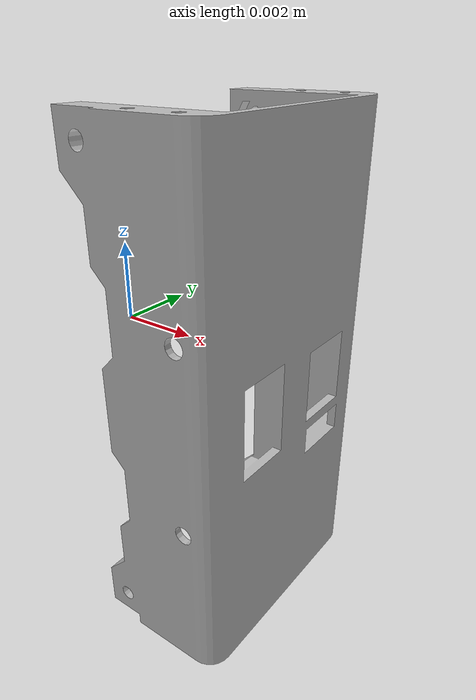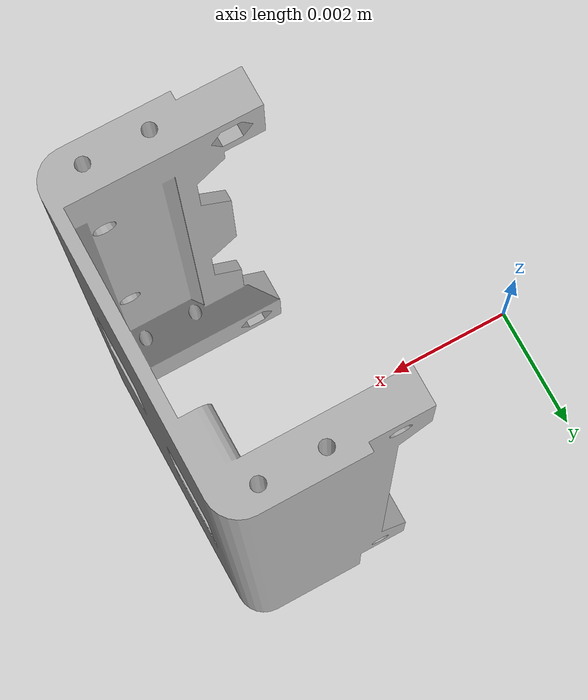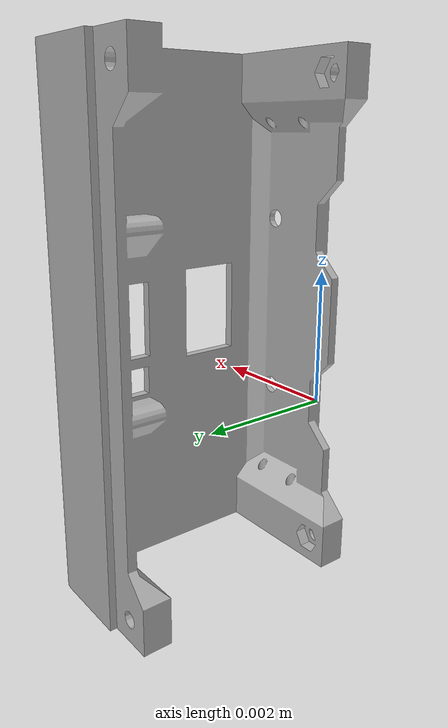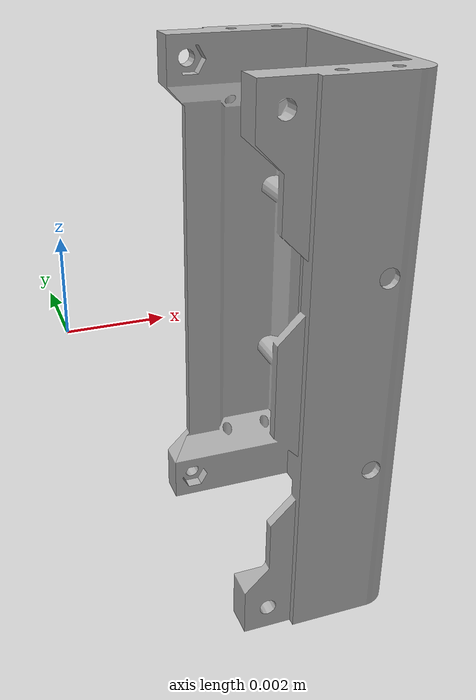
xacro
<?xml version="1.0" ?>
<robot name="quadruped-asbuilt" xmlns:xacro="http://www.ros.org/wiki/xacro">

<xacro:include filename="$(find quadruped-asbuilt_description)/urdf/materials.xacro" />
<xacro:include filename="$(find quadruped-asbuilt_description)/urdf/quadruped-asbuilt.trans" />
<xacro:include filename="$(find quadruped-asbuilt_description)/urdf/quadruped-asbuilt.gazebo" />
<link name="base_link">
  <inertial>
    <origin xyz="0.00018683630752087743 -0.00534356428814258 -0.0013851406731959794" rpy="0 0 0"/>
    <mass value="2.8550169614336"/>
    <inertia ixx="0.021554" iyy="0.022632" izz="0.003036" ixy="-1e-05" iyz="-1e-05" ixz="9e-06"/>
  </inertial>
  <visual>
    <origin xyz="0 0 0" rpy="0 0 0"/>
    <geometry>
      <mesh filename="package://quadruped-asbuilt_description/meshes/base_link.stl" scale="0.001 0.001 0.001"/>
    </geometry>
    <material name="silver"/>
  </visual>
  <collision>
    <origin xyz="0 0 0" rpy="0 0 0"/>
    <geometry>
      <mesh filename="package://quadruped-asbuilt_description/meshes/base_link.stl" scale="0.001 0.001 0.001"/>
    </geometry>
  </collision>
</link>

</robot>

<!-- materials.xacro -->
<robot name="quadruped-asbuilt" xmlns:xacro="http://www.ros.org/wiki/xacro" >

<material name="silver">
  <color rgba="0.700 0.700 0.700 1.000"/>
</material>

</robot>

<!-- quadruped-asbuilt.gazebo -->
<robot name="quadruped-asbuilt" xmlns:xacro="http://www.ros.org/wiki/xacro" >

<xacro:property name="body_color" value="Gazebo/Silver" />

<gazebo>
  <plugin name="control" filename="libgazebo_ros_control.so"/>
</gazebo>
<gazebo reference="base_link">
  <material>${body_color}</material>
  <mu1>0.2</mu1>
  <mu2>0.2</mu2>
  <selfCollide>true</selfCollide>
  <gravity>true</gravity>
</gazebo>

</robot>
